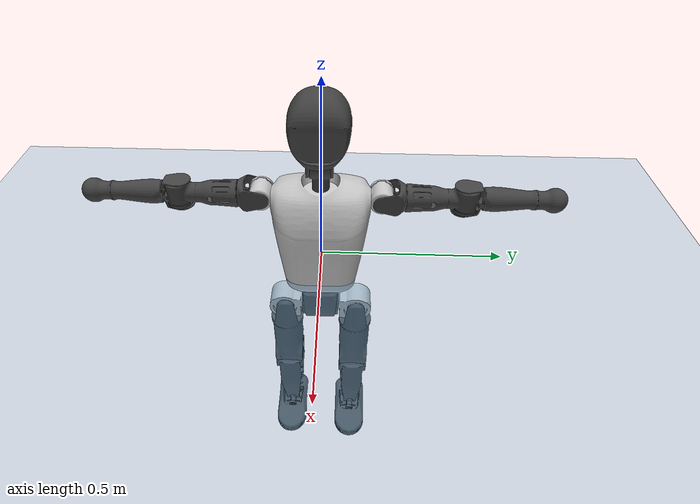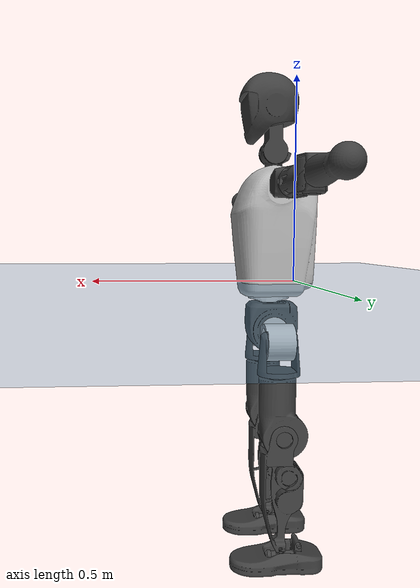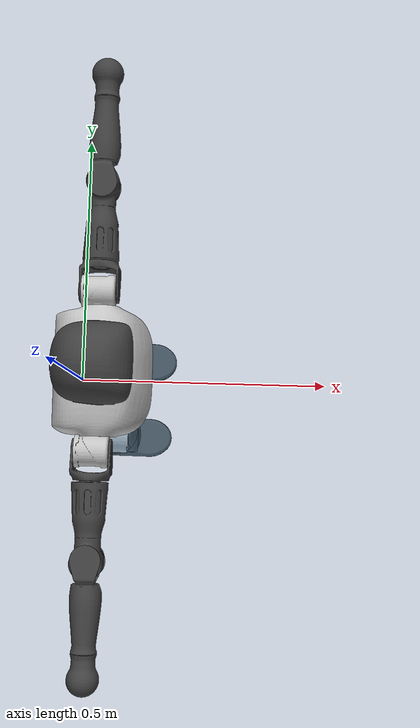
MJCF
<mujoco model="T1">
  <compiler angle="radian" assetdir="assets" balanceinertia="true" inertiafromgeom="false"/>

  <option timestep="0.005" density="1.2" viscosity="2e-05"/>

  <size nkey="1"/>

  <visual>
    <quality shadowsize="8192"/>
    <map shadowclip="0.5"/>
  </visual>

  <default>
    <default class="/">
      <joint armature="0.01" damping="0.01" frictionloss="0.1"/>
      <geom contype="0" conaffinity="0" group="1" solref="-1000 -80"/>
      <site size="0.01 0.005 0.005" group="5"/>
      <general forcelimited="true" biastype="affine" gainprm="25" biasprm="0 -25 -0.6"/>
      <default class="t1">
        <geom rgba="0.25 0.25 0.25 1"/>
        <default class="visual">
          <geom type="mesh" group="2"/>
        </default>
        <default class="collision">
          <geom group="3"/>
        </default>
        <default class="foot">
          <geom size="0.1115 0.05 0.015" type="box" condim="6" group="4" priority="1" solimp="0.015 1 0.015"/>
        </default>
        <default class="reward_collision_sphere">
          <geom group="5" rgba="1 0 0 1"/>
        </default>
      </default>
    </default>
  </default>

  <asset>
    <texture type="skybox" colorspace="auto" name="//unnamed_texture_0" builtin="gradient" rgb1="0.95 0.95 0.95" rgb2="0.95 0.95 0.95" width="100" height="600"/>
    <texture type="2d" colorspace="auto" name="texplane" builtin="checker" rgb1="0.345 0.575 0.748" rgb2="0.345 0.575 0.748" markrgb="1 1 1" width="512" height="512"/>
    <material name="MatPlane" class="/" texture="texplane" texuniform="true" texrepeat="2 2" specular="0.9"/>
    <mesh name="Trunk" class="/" file="Trunk.stl"/>
    <mesh name="H1" class="/" file="H1.stl"/>
    <mesh name="H2" class="/" file="H2.stl"/>
    <mesh name="AL1" class="/" file="AL1.stl"/>
    <mesh name="AL2" class="/" file="AL2.stl"/>
    <mesh name="AL3" class="/" file="AL3.stl"/>
    <mesh name="left_hand_link" class="/" file="left_hand_link.stl"/>
    <mesh name="AR1" class="/" file="AR1.stl"/>
    <mesh name="AR2" class="/" file="AR2.stl"/>
    <mesh name="AR3" class="/" file="AR3.stl"/>
    <mesh name="right_hand_link" class="/" file="right_hand_link.stl"/>
    <mesh name="Waist" class="/" file="Waist.stl"/>
    <mesh name="Hip_Pitch_Left" class="/" file="Hip_Pitch_Left.stl"/>
    <mesh name="Hip_Roll_Left" class="/" file="Hip_Roll_Left.stl"/>
    <mesh name="Hip_Yaw_Left" class="/" file="Hip_Yaw_Left.stl"/>
    <mesh name="Shank_Left" class="/" file="Shank_Left.stl"/>
    <mesh name="Ankle_Cross_Left" class="/" file="Ankle_Cross_Left.stl"/>
    <mesh name="left_foot_link" class="/" file="left_foot_link.stl"/>
    <mesh name="Hip_Pitch_Right" class="/" file="Hip_Pitch_Right.stl"/>
    <mesh name="Hip_Roll_Right" class="/" file="Hip_Roll_Right.stl"/>
    <mesh name="Hip_Yaw_Right" class="/" file="Hip_Yaw_Right.stl"/>
    <mesh name="Shank_Right" class="/" file="Shank_Right.stl"/>
    <mesh name="Ankle_Cross_Right" class="/" file="Ankle_Cross_Right.stl"/>
    <mesh name="right_foot_link" class="/" file="right_foot_link.stl"/>
  </asset>

  <worldbody>
    <geom name="floor" class="/" size="100 100 0.125" type="plane" group="0" material="MatPlane"/>
    <light name="toplight_shadow" class="/" pos="0 0 5" dir="0.0990148 0.0990148 -0.990148" type="directional" ambient="0.04 0.04 0.04" diffuse="0.55 0.55 0.55" specular="0.12 0.12 0.12"/>
    <light name="toplight_fill" class="/" pos="0 0 5" dir="0.0990148 0.0990148 -0.990148" type="directional" castshadow="false" ambient="0.04 0.04 0.04" diffuse="0.3 0.3 0.3" specular="0.08 0.08 0.08"/>
    <body name="trunk" childclass="t1" pos="1.37733e-05 0.000908589 -0.000191975" quat="1 0.000206322 -9.33267e-05 -0.000137527">
      <inertial pos="0.047924 7.50917e-05 0.108746" quat="0.999953 -0.00237823 -0.00937171 0.000782883" mass="10.3983" diaginertia="0.0487591 0.0643026 0.067498"/>
      <joint name="//unnamed_joint_0" type="free" armature="0" damping="0" frictionloss="0"/>
      <geom name="//unnamed_geom_1" class="visual" rgba="0.76 0.76 0.76 1" mesh="Trunk"/>
      <geom name="//unnamed_geom_2" class="collision" size="0.0719291 0.0959055 0.143858" pos="0.0526401 0 0.124402" type="box"/>
      <geom name="//unnamed_geom_3" class="reward_collision_sphere" size="0.110291" pos="0.0526401 0 0.103668"/>
      <geom name="//unnamed_geom_4" class="reward_collision_sphere" size="0.0143858" pos="0.0526401 0.0818673 0"/>
      <geom name="//unnamed_geom_5" class="reward_collision_sphere" size="0.0143858" pos="0.0526401 -0.0818673 0"/>
      <geom name="//unnamed_geom_6" class="reward_collision_sphere" size="0.0143858" pos="0.0526401 0.103057 0.186603"/>
      <geom name="//unnamed_geom_7" class="reward_collision_sphere" size="0.0143858" pos="0.0526401 -0.103057 0.186603"/>
      <site name="imu" pos="-0.00317229 -2.7157e-05 0.00338785" size="0.00959055"/>
      <camera name="track" pos="0 -1.92629 0" quat="0.707107 0.707107 0 0" mode="trackcom"/>
      <camera name="ego_camera" pos="0.107035 0 0.435407" quat="-0.5 -0.5 0.5 0.5"/>
      <body name="H1" pos="0.0543628 -0.000344873 0.251002" quat="1 3.29603e-05 1.04405e-05 3.16913e-05">
        <inertial pos="-0.00117772 -0.0015218 0.0595233" quat="0.764065 -0.0130177 0.00215948 0.645004" mass="0.394028" diaginertia="0.00012743 0.000185902 0.000179579"/>
        <joint name="AAHead_yaw" pos="0 0 0" axis="-0.000263119 -0.00276453 0.999996" range="-1.58349 1.56479" armature="0.00985883" damping="0.0107526" frictionloss="0.0975331"/>
        <geom name="//unnamed_geom_8" class="visual" mesh="H1"/>
        <body name="H2" pos="0.000569858 -0.00161368 0.0639104" quat="1 0.000185536 0.000136922 0.00013686">
          <inertial pos="0.0058433 0.000697056 0.101196" quat="0.988361 0.106081 -0.0748731 -0.0792641" mass="0.549436" diaginertia="0.0010582 0.00156888 0.00206111"/>
          <joint name="Head_pitch" pos="0 0 0" axis="-0.000335214 -1 0.000857751" range="-1.22106 0.3443" armature="0.00915167" damping="0.0044727" frictionloss="0.0976984"/>
          <geom name="//unnamed_geom_9" class="visual" mesh="H2"/>
          <geom name="//unnamed_geom_10" class="collision" size="0.0767244" pos="0.00877335 0 0.114035"/>
          <geom name="//unnamed_geom_11" class="reward_collision_sphere" size="0.0863149" pos="0.0175467 0 0.103668"/>
        </body>
      </body>
      <body name="AL1" pos="0.0517539 0.102735 0.226655" quat="1 0.000134376 -4.53162e-05 3.95089e-05">
        <inertial pos="0.000180353 0.0430208 0.000200398" quat="0.504422 0.495875 -0.504209 0.495419" mass="0.472755" diaginertia="0.00071876 0.00107303 0.000354556"/>
        <joint name="Left_Shoulder_Pitch" pos="0 0 0" axis="4.94422e-05 1 0.000654994" range="-3.28995 1.23698" armature="0.00958198" damping="0.00261681" frictionloss="0.0914544"/>
        <geom name="//unnamed_geom_12" class="visual" rgba="0.76 0.76 0.76 1" mesh="AL1"/>
        <body name="AL2" pos="0.000794106 0.0453495 -5.78452e-05" quat="1 -2.51767e-05 -6.95778e-05 9.19766e-05">
          <inertial pos="0.00385882 0.0368563 0.000602317" quat="0.487446 0.513803 -0.487079 0.511035" mass="0.139499" diaginertia="0.000205474 0.000284662 0.000211562"/>
          <joint name="Left_Shoulder_Roll" pos="0 0 0" axis="-1 0.000405354 0.000800711" range="-1.58962 1.7344" armature="0.00994722" damping="0.00471532" frictionloss="0.0964449"/>
          <geom name="//unnamed_geom_13" class="visual" mesh="AL2"/>
          <body name="AL3" pos="0.000421372 0.0587301 -0.000153047" quat="1 8.7217e-07 -6.1569e-07 -1.22563e-06">
            <inertial pos="-0.000169886 0.0815633 -0.000513618" quat="0.705361 0.708834 0.000828723 0.00433639" mass="0.898562" diaginertia="0.00671476 0.0106314 0.000751575"/>
            <joint name="Left_Elbow_Pitch" pos="0 0 0" axis="-0.00422537 -0.999991 0.000523123" stiffness="0.00330338" range="-2.29132 2.28264" armature="0.0102401" damping="0.007765" frictionloss="0.0972172"/>
            <geom name="//unnamed_geom_14" class="visual" mesh="AL3"/>
            <geom name="//unnamed_geom_15" class="collision" size="0.0287716 0.0719291" pos="0 0.0481573 0" quat="0.707105 0.707108 0 0" type="cylinder"/>
            <geom name="//unnamed_geom_16" class="reward_collision_sphere" size="0.034526"/>
            <body name="left_hand_link" pos="0.000127219 0.142642 0.00153998" quat="1 9.22095e-05 -9.33742e-05 -0.000336767">
              <inertial pos="-0.00084412 0.104864 0.00052908" quat="0.708842 0.705368 0.000413972 -8.97413e-05" mass="0.287736" diaginertia="0.00422551 0.00667688 0.0002581"/>
              <joint name="Left_Elbow_Yaw" pos="0 0 0" axis="-0.00214211 0.0045646 0.999987" range="-2.43983 -0.0181743" armature="0.00938293" damping="0.00838824" frictionloss="0.0957965"/>
              <geom name="//unnamed_geom_17" class="visual" mesh="left_hand_link"/>
              <geom name="//unnamed_geom_18" class="collision" size="0.0287716 0.0839173" pos="0 0.125209 0" quat="0.707105 0.707108 0 0" type="cylinder"/>
              <geom name="//unnamed_geom_19" class="reward_collision_sphere" size="0.0479527"/>
              <geom name="//unnamed_geom_20" class="reward_collision_sphere" size="0.0335669" pos="0 0.105946 0"/>
              <geom name="//unnamed_geom_21" class="reward_collision_sphere" size="0.0335669" pos="0 0.207076 0"/>
            </body>
          </body>
        </body>
      </body>
      <body name="AR1" pos="0.0494581 -0.101607 0.227359" quat="1 0.000202104 0.000381878 -0.000128746">
        <inertial pos="-0.00022119 -0.044936 -0.000467178" quat="0.50147 0.499206 -0.503674 0.495615" mass="0.466808" diaginertia="0.000718403 0.00107584 0.00034779"/>
        <joint name="Right_Shoulder_Pitch" pos="0 0 0" axis="-0.000463808 -0.999995 0.00305824" range="-1.2226 3.32789" armature="0.00960833" damping="0.008585" frictionloss="0.0999758"/>
        <geom name="//unnamed_geom_22" class="visual" rgba="0.76 0.76 0.76 1" mesh="AR1"/>
        <body name="AR2" pos="0.000299969 -0.0451313 0.000869012" quat="1 -0.000182327 -8.36982e-05 0.000285041">
          <inertial pos="0.00414318 -0.0367863 0.000217922" quat="0.509681 0.491029 -0.510436 0.488438" mass="0.140516" diaginertia="0.000208502 0.000287921 0.000210662"/>
          <joint name="Right_Shoulder_Roll" pos="0 0 0" axis="-0.999975 0.00698376 0.000817137" range="-1.74956 1.56318" armature="0.00972355" damping="0.00400127" frictionloss="0.102138"/>
          <geom name="//unnamed_geom_23" class="visual" mesh="AR2"/>
          <body name="AR3" pos="-0.00117934 -0.0589113 -0.00168635" quat="1 6.30844e-05 -7.00863e-06 2.61602e-05">
            <inertial pos="-0.000596343 -0.0826803 0.000651672" quat="0.707775 0.706438 -0.000521039 -7.51769e-05" mass="0.901275" diaginertia="0.00669455 0.0105755 0.000745464"/>
            <joint name="Right_Elbow_Pitch" pos="0 0 0" axis="0.000143398 1 0.000270127" range="-2.27557 2.28656" armature="0.00935887" damping="0.0100304" frictionloss="0.0919469"/>
            <geom name="//unnamed_geom_24" class="visual" mesh="AR3"/>
            <geom name="//unnamed_geom_25" class="collision" size="0.0287716 0.0719291" pos="0 -0.0481573 0" quat="0.707105 0.707108 0 0" type="cylinder"/>
            <geom name="//unnamed_geom_26" class="reward_collision_sphere" size="0.034526"/>
            <body name="right_hand_link" pos="-0.000110112 -0.141318 0.000127104" quat="1 3.00626e-06 -0.000210807 4.08338e-05">
              <inertial pos="-0.000377576 -0.104566 0.0015997" quat="0.706473 0.70774 0.00017935 -1.25654e-05" mass="0.28997" diaginertia="0.00428287 0.00679749 0.000260152"/>
              <joint name="Right_Elbow_Yaw" pos="0 0 0" axis="0.00435344 0.00436422 0.999981" range="0.00510537 2.42074" armature="0.00966896" damping="0.00184514" frictionloss="0.0931829"/>
              <geom name="//unnamed_geom_27" class="visual" mesh="right_hand_link"/>
              <geom name="//unnamed_geom_28" class="collision" size="0.0287716 0.0839173" pos="0 -0.125209 0" quat="0.707105 0.707108 0 0" type="cylinder"/>
              <geom name="//unnamed_geom_29" class="reward_collision_sphere" size="0.0479527"/>
              <geom name="//unnamed_geom_30" class="reward_collision_sphere" size="0.0335669" pos="0 -0.105946 0"/>
              <geom name="//unnamed_geom_31" class="reward_collision_sphere" size="0.0335669" pos="0 -0.207076 0"/>
            </body>
          </body>
        </body>
      </body>
      <body name="Waist" pos="0.0555955 -0.000990284 -0.11853" quat="1 0.000233843 -0.000102463 4.13378e-05">
        <inertial pos="0.00165273 -0.00073216 0.00816548" quat="0.983572 0.000759978 -0.180481 0.00343947" mass="2.24357" diaginertia="0.00276168 0.00432939 0.00558497"/>
        <joint name="Waist" pos="0 0 0" axis="-0.00202276 0.00116163 0.999997" stiffness="0.00167361" range="-1.56077 1.56536" armature="0.00946064" damping="0.00894126" frictionloss="0.0964101"/>
        <geom name="//unnamed_geom_32" class="visual" mesh="Waist"/>
        <body name="Hip_Pitch_Left" pos="0.00145355 0.100831 -0.00018883" quat="1 -0.000485237 0.000277339 -0.000426262">
          <inertial pos="0.000836592 -0.00639677 -0.0185528" quat="0.97504 0.22164 0.0128943 0.00257052" mass="0.889485" diaginertia="0.000940346 0.00121515 0.00148338"/>
          <joint name="Left_Hip_Pitch" pos="0 0 0" axis="0.00831509 0.999961 -0.00281082" range="-1.80248 1.58801" armature="0.00918961" damping="0.00828937" frictionloss="0.096997"/>
          <geom name="//unnamed_geom_33" class="visual" rgba="0.76 0.76 0.76 1" mesh="Hip_Pitch_Left"/>
          <body name="Hip_Roll_Left" pos="0.000975424 0.00131616 -0.0212691" quat="1 -0.000707191 -0.000129496 0.000354398">
            <inertial pos="0.00141352 -1.85569e-06 -0.0552886" quat="0.707327 -0.0052216 -0.00619734 0.70684" mass="0.333375" diaginertia="0.000898764 0.00123657 0.000607963"/>
            <joint name="Left_Hip_Roll" pos="0 0 0" axis="-0.999997 0.001834 -0.00187807" range="-1.58333 0.202419" armature="0.0100287" damping="0.00702266" frictionloss="0.0935204"/>
            <geom name="//unnamed_geom_34" class="visual" mesh="Hip_Roll_Left"/>
            <geom name="//unnamed_geom_35" class="reward_collision_sphere" size="0.052748"/>
            <body name="Hip_Yaw_Left" pos="0.000507337 0.000116402 -0.0846716" quat="1 -3.11544e-06 0.000168741 2.20563e-05">
              <inertial pos="-0.00638135 -3.00885e-05 -0.0926938" quat="0.699352 -0.0325188 -0.0316937 0.713333" mass="1.91824" diaginertia="0.0132675 0.0207444 0.00308947"/>
              <joint name="Left_Hip_Yaw" pos="0 0 0" axis="6.24624e-06 3.42391e-05 -1" range="-0.995365 1.00676" armature="0.00958483" damping="0.00487982" frictionloss="0.0958629"/>
              <geom name="//unnamed_geom_36" class="visual" mesh="Hip_Yaw_Left"/>
              <geom name="//unnamed_geom_37" class="collision" size="0.0479527 0.0767244" type="cylinder"/>
              <body name="Shank_Left" pos="-0.0107361 5.87046e-05 -0.139049" quat="1 -3.09581e-05 -3.47236e-05 6.63576e-05">
                <inertial pos="-0.00476603 0.000785167 -0.128902" quat="0.997612 0.00190348 -0.0240133 0.0647229" mass="1.49151" diaginertia="0.0178349 0.0283409 0.00218659"/>
                <joint name="Left_Knee_Pitch" pos="0 0 0" axis="-0.00265448 0.999996 -0.000985811" range="-0.00602015 2.35916" armature="0.00974141" damping="0.0113353" frictionloss="0.0945342"/>
                <geom name="//unnamed_geom_38" class="visual" mesh="Shank_Left"/>
                <geom name="//unnamed_geom_39" class="collision" size="0.0479527 0.0719291" pos="0 0 -0.124402" type="cylinder"/>
                <geom name="//unnamed_geom_40" class="reward_collision_sphere" size="0.0623386"/>
                <body name="Ankle_Cross_Left" pos="-0.000892633 -0.000475366 -0.290169" quat="1 -9.32373e-05 0.000224275 0.00010597">
                  <inertial pos="-0.00224535 -0.000996283 -0.00858715" quat="0.441765 0.550196 0.552786 0.443346" mass="0.0647179" diaginertia="1.51126e-05 2.13569e-05 1.35139e-05"/>
                  <joint name="Left_Ankle_Pitch" pos="0 0 0" axis="-0.00123305 0.999998 0.001543" stiffness="0.00146171" range="-0.861705 0.346987" armature="0.00991015" damping="0.0103944" frictionloss="0.0957672"/>
                  <geom name="//unnamed_geom_41" class="visual" mesh="Ankle_Cross_Left"/>
                  <body name="left_foot_link" pos="-0.000217854 -0.000669635 -0.0124948" quat="1 -6.10063e-05 -0.000101445 1.11458e-05">
                    <inertial pos="6.59082e-05 0.000202799 -0.00822449" quat="-0.00133081 0.620757 -0.000321702 0.784002" mass="0.601785" diaginertia="0.00138917 0.00198154 0.00262579"/>
                    <joint name="Left_Ankle_Roll" pos="0 0 0" axis="-0.999994 0.00333869 -0.000640972" range="-0.444639 0.439075" armature="0.00946284" damping="0.0150516" frictionloss="0.0953576"/>
                    <geom name="//unnamed_geom_42" class="visual" mesh="left_foot_link"/>
                    <geom name="left_foot" class="foot" size="0.110007 0.0481937 0.0146368" pos="0.00877335 0 -0.0155503"/>
                    <geom name="//unnamed_geom_44" class="reward_collision_sphere" size="0.0498709" pos="0.00877335 0 -0.0155503"/>
                    <geom name="//unnamed_geom_45" class="reward_collision_sphere" size="0.0287716" pos="0.0833469 -0.0221523 -0.0155503"/>
                    <geom name="//unnamed_geom_46" class="reward_collision_sphere" size="0.0287716" pos="-0.0614135 -0.0221523 -0.0155503"/>
                    <site name="left_foot" class="foot" pos="0.00877335 0 -0.0155503" size="0.00959055"/>
                  </body>
                </body>
              </body>
            </body>
          </body>
        </body>
        <body name="Hip_Pitch_Right" pos="-0.000494142 -0.102706 0.00064026" quat="1 0.00016235 0.000842563 -0.000329635">
          <inertial pos="-6.93989e-05 0.00578856 -0.0184779" quat="0.973836 -0.226537 0.0179204 -0.00159485" mass="0.883824" diaginertia="0.000931153 0.00119878 0.00148911"/>
          <joint name="Right_Hip_Pitch" pos="0 0 0" axis="-0.000317131 -0.999997 0.00225664" stiffness="0.000136807" range="-1.55823 1.79733" armature="0.0100112" damping="0.00708363" frictionloss="0.100212"/>
          <geom name="//unnamed_geom_47" class="visual" rgba="0.76 0.76 0.76 1" mesh="Hip_Pitch_Right"/>
          <body name="Hip_Roll_Right" pos="-0.000214206 0.00135793 -0.0195025" quat="1 7.01377e-06 9.79983e-05 4.46349e-05">
            <inertial pos="0.000598972 0.000905154 -0.0564828" quat="0.707024 -0.00629704 -0.00210397 0.707159" mass="0.334316" diaginertia="0.000890515 0.0012529 0.000614877"/>
            <joint name="Right_Hip_Roll" pos="0 0 0" axis="-0.999995 0.00255665 0.00189839" range="-0.19805 1.57062" armature="0.00919903" damping="0.00970622" frictionloss="0.0973338"/>
            <geom name="//unnamed_geom_48" class="visual" mesh="Hip_Roll_Right"/>
            <geom name="//unnamed_geom_49" class="reward_collision_sphere" size="0.052748"/>
            <body name="Hip_Yaw_Right" pos="3.33584e-05 0.000809865 -0.0847341" quat="1 -7.13183e-05 0.000174046 7.67862e-05">
              <inertial pos="-0.00685115 0.000363704 -0.0923206" quat="0.714577 -0.0311897 -0.0337556 0.698045" mass="1.87955" diaginertia="0.0133316 0.0208391 0.00312111"/>
              <joint name="Right_Hip_Yaw" pos="0 0 0" axis="-0.000136049 0.000848801 -1" range="-1.0129 1.00585" armature="0.00894029" damping="0.00787763" frictionloss="0.0988338"/>
              <geom name="//unnamed_geom_50" class="visual" mesh="Hip_Yaw_Right"/>
              <geom name="//unnamed_geom_51" class="collision" size="0.0479527 0.0767244" type="cylinder"/>
              <body name="Shank_Right" pos="-0.0135956 1.80275e-05 -0.138871" quat="1 -0.000234984 0.000122218 0.000152919">
                <inertial pos="-0.00537989 -0.000690261 -0.126315" quat="0.999145 -6.52837e-05 -0.0248147 -0.0330743" mass="1.58429" diaginertia="0.0184857 0.0290173 0.00239279"/>
                <joint name="Right_Knee_Pitch" pos="0 0 0" axis="0.00114338 -0.999965 0.00822871" stiffness="0.000355607" range="-2.34344 -0.0017015" armature="0.00937618" damping="0.00555712" frictionloss="0.0983175"/>
                <geom name="//unnamed_geom_52" class="visual" mesh="Shank_Right"/>
                <geom name="//unnamed_geom_53" class="collision" size="0.0479527 0.0719291" pos="0 0 -0.124402" type="cylinder"/>
                <geom name="//unnamed_geom_54" class="reward_collision_sphere" size="0.0623386"/>
                <body name="Ankle_Cross_Right" pos="-0.00095834 -0.000836921 -0.290065" quat="1 -3.36929e-05 0.000579384 0.000298999">
                  <inertial pos="-0.00276935 0.000519352 -0.00868214" quat="0.442188 0.554527 0.55059 0.440251" mass="0.0641872" diaginertia="1.5117e-05 2.12962e-05 1.36015e-05"/>
                  <joint name="Right_Ankle_Pitch" pos="0 0 0" axis="-6.18061e-05 -1 -0.00046585" range="-0.350523 0.86494" armature="0.0094914" damping="0.00753712" frictionloss="0.0938574"/>
                  <geom name="//unnamed_geom_55" class="visual" mesh="Ankle_Cross_Right"/>
                  <body name="right_foot_link" pos="-0.000571827 -0.00155159 -0.0115398" quat="1 0.00012733 -1.21193e-05 3.32823e-05">
                    <inertial pos="8.84834e-06 -0.000213605 -0.00933879" quat="-0.000600243 0.621711 -0.00027398 0.783247" mass="0.606489" diaginertia="0.00140181 0.00197935 0.00264338"/>
                    <joint name="Right_Ankle_Roll" pos="0 0 0" axis="-0.999992 0.00109726 -0.00392713" range="-0.411349 0.436979" armature="0.00963586" damping="0.00946355" frictionloss="0.0990118"/>
                    <geom name="//unnamed_geom_56" class="visual" mesh="right_foot_link"/>
                    <geom name="right_foot" class="foot" size="0.100562 0.0487996 0.0147801" pos="0.00877335 0 -0.0155503"/>
                    <geom name="//unnamed_geom_58" class="reward_collision_sphere" size="0.0383622"/>
                    <geom name="//unnamed_geom_59" class="reward_collision_sphere" size="0.0287716" pos="0.00877335 0 -0.0155503"/>
                    <geom name="//unnamed_geom_60" class="reward_collision_sphere" size="0.0287716" pos="0.0833469 0.0221523 -0.0155503"/>
                    <geom name="//unnamed_geom_61" class="reward_collision_sphere" size="0.0287716" pos="-0.0614135 0.0221523 -0.0155503"/>
                    <site name="right_foot" class="foot" pos="0.00877335 0 -0.0155503" size="0.00959055"/>
                  </body>
                </body>
              </body>
            </body>
          </body>
        </body>
      </body>
    </body>
  </worldbody>

  <contact>
    <pair class="/" geom1="floor" geom2="left_foot" name="//unnamed_contact_0"/>
    <pair class="/" geom1="floor" geom2="right_foot" name="//unnamed_contact_1"/>
  </contact>

  <actuator>
    <general name="AAHead_yaw" class="/" joint="AAHead_yaw" forcerange="-6.94732 6.94732" gainprm="23.6247" biasprm="0 -23.6247 -0.562305"/>
    <general name="Head_pitch" class="/" joint="Head_pitch" forcerange="-6.53385 6.53385" gainprm="23.6247" biasprm="0 -23.6247 -0.562305"/>
    <general name="Left_Shoulder_Pitch" class="/" joint="Left_Shoulder_Pitch" forcerange="-16.792 16.792" gainprm="23.6247" biasprm="0 -23.6247 -0.562305"/>
    <general name="Left_Shoulder_Roll" class="/" joint="Left_Shoulder_Roll" forcerange="-17.1522 17.1522" gainprm="23.6247" biasprm="0 -23.6247 -0.562305"/>
    <general name="Left_Elbow_Pitch" class="/" joint="Left_Elbow_Pitch" forcerange="-17.3134 17.3134" gainprm="23.6247" biasprm="0 -23.6247 -0.562305"/>
    <general name="Left_Elbow_Yaw" class="/" joint="Left_Elbow_Yaw" forcerange="-17.2013 17.2013" gainprm="23.6247" biasprm="0 -23.6247 -0.562305"/>
    <general name="Right_Shoulder_Pitch" class="/" joint="Right_Shoulder_Pitch" forcerange="-17.3694 17.3694" gainprm="23.6247" biasprm="0 -23.6247 -0.562305"/>
    <general name="Right_Shoulder_Roll" class="/" joint="Right_Shoulder_Roll" forcerange="-17.4292 17.4292" gainprm="23.6247" biasprm="0 -23.6247 -0.562305"/>
    <general name="Right_Elbow_Pitch" class="/" joint="Right_Elbow_Pitch" forcerange="-17.4889 17.4889" gainprm="23.6247" biasprm="0 -23.6247 -0.562305"/>
    <general name="Right_Elbow_Yaw" class="/" joint="Right_Elbow_Yaw" forcerange="-16.9972 16.9972" gainprm="23.6247" biasprm="0 -23.6247 -0.562305"/>
    <general name="Waist" class="/" joint="Waist" forcerange="-28.8899 28.8899" gainprm="23.6247" biasprm="0 -23.6247 -0.562305"/>
    <general name="Left_Hip_Pitch" class="/" joint="Left_Hip_Pitch" forcerange="-43.3643 43.3643" gainprm="23.6247" biasprm="0 -23.6247 -0.562305"/>
    <general name="Left_Hip_Roll" class="/" joint="Left_Hip_Roll" forcerange="-28.9337 28.9337" gainprm="23.6247" biasprm="0 -23.6247 -0.562305"/>
    <general name="Left_Hip_Yaw" class="/" joint="Left_Hip_Yaw" forcerange="-28.2956 28.2956" gainprm="23.6247" biasprm="0 -23.6247 -0.562305"/>
    <general name="Left_Knee_Pitch" class="/" joint="Left_Knee_Pitch" forcerange="-57.274 57.274" gainprm="23.6247" biasprm="0 -23.6247 -0.562305"/>
    <general name="Left_Ankle_Pitch" class="/" joint="Left_Ankle_Pitch" forcerange="-19.963 19.963" gainprm="23.6247" biasprm="0 -23.6247 -0.562305"/>
    <general name="Left_Ankle_Roll" class="/" joint="Left_Ankle_Roll" forcerange="-13.6475 13.6475" gainprm="23.6247" biasprm="0 -23.6247 -0.562305"/>
    <general name="Right_Hip_Pitch" class="/" joint="Right_Hip_Pitch" forcerange="-42.9475 42.9475" gainprm="23.6247" biasprm="0 -23.6247 -0.562305"/>
    <general name="Right_Hip_Roll" class="/" joint="Right_Hip_Roll" forcerange="-28.9384 28.9384" gainprm="23.6247" biasprm="0 -23.6247 -0.562305"/>
    <general name="Right_Hip_Yaw" class="/" joint="Right_Hip_Yaw" forcerange="-29.5669 29.5669" gainprm="23.6247" biasprm="0 -23.6247 -0.562305"/>
    <general name="Right_Knee_Pitch" class="/" joint="Right_Knee_Pitch" forcerange="-57.548 57.548" gainprm="23.6247" biasprm="0 -23.6247 -0.562305"/>
    <general name="Right_Ankle_Pitch" class="/" joint="Right_Ankle_Pitch" forcerange="-19.277 19.277" gainprm="23.6247" biasprm="0 -23.6247 -0.562305"/>
    <general name="Right_Ankle_Roll" class="/" joint="Right_Ankle_Roll" forcerange="-14.3077 14.3077" gainprm="23.6247" biasprm="0 -23.6247 -0.562305"/>
  </actuator>

  <sensor>
    <gyro site="imu" name="imu_angular_velocity"/>
    <velocimeter site="imu" name="imu_linear_velocity"/>
    <framelinvel objtype="site" objname="left_foot" name="left_foot_global_linear_velocity"/>
    <framelinvel objtype="site" objname="right_foot" name="right_foot_global_linear_velocity"/>
  </sensor>

  <keyframe>
    <key name="home" qpos="0 0 0.6385 1 0 0 0 0 0 0 1.4 0 -0.4 0 -1.4 0 0.4 0 -0.4 0 0 0.8 -0.4 0 0.4 0 0 -0.8 0.4 0"/>
  </keyframe>
</mujoco>
